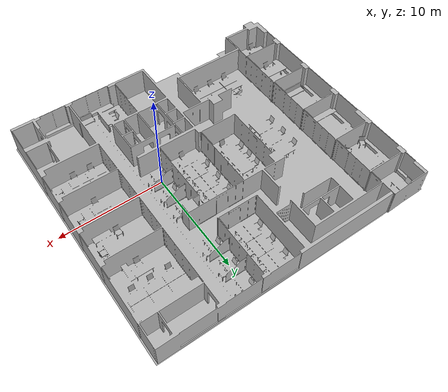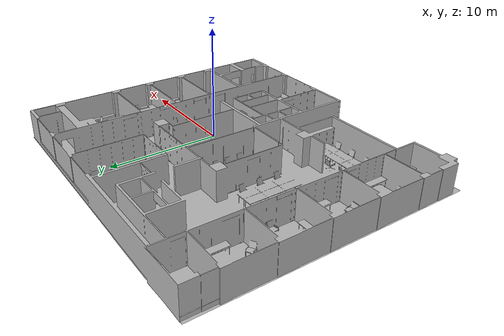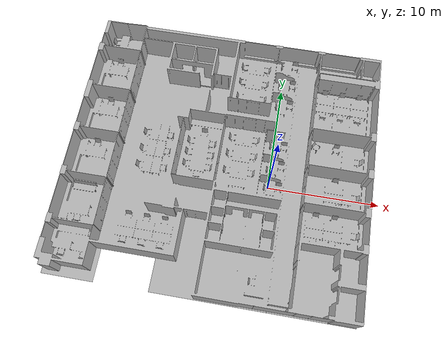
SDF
<?xml version="1.0"?>
<sdf version="1.6">
  <world name="ivy_office_world">
    <gravity>0 0 -9.80665</gravity>

    <scene>
      <ambient>0.4 0.4 0.4 1</ambient>
      <background>0.7 0.7 0.8 1</background>
      <shadows>true</shadows>
    </scene>

    <light name="sun" type="directional">
      <cast_shadows>true</cast_shadows>
      <pose>0 0 10 0 0 0</pose>
      <diffuse>0.8 0.8 0.8 1</diffuse>
      <specular>0.2 0.2 0.2 1</specular>
      <attenuation>
        <range>1000</range>
        <constant>0.9</constant>
        <linear>0.01</linear>
        <quadratic>0.001</quadratic>
      </attenuation>
      <direction>-0.5 0.1 -0.9</direction>
    </light>

    <include>
      <uri>model://ivy_office</uri>
    </include>
  </world>
</sdf>

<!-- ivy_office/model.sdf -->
<sdf version="1.6">
  <model name="ivy_office">
    <static>true</static>

    <link name="ivy_office_link">
      <visual name="ivy_office_visual">
        <pose>0 0 0 1.5708 0 0</pose>
        <geometry>
          <mesh>
            <uri>model://ivy_office/meshes/Ivy_Office_03.obj</uri>
            <scale>0.01 0.01 0.01</scale>
          </mesh>
        </geometry>
      </visual>

      <collision name="ivy_office_collision">
        <pose>0 0 0 1.5708 0 0</pose>
        <geometry>
          <mesh>
            <uri>model://ivy_office/meshes/Ivy_Office_03.obj</uri>
            <scale>0.01 0.01 0.01</scale>
          </mesh>
        </geometry>
      </collision>
    </link>
  </model>
</sdf>
